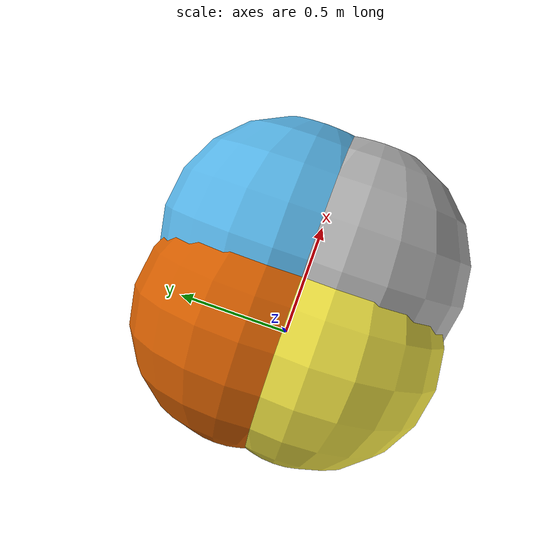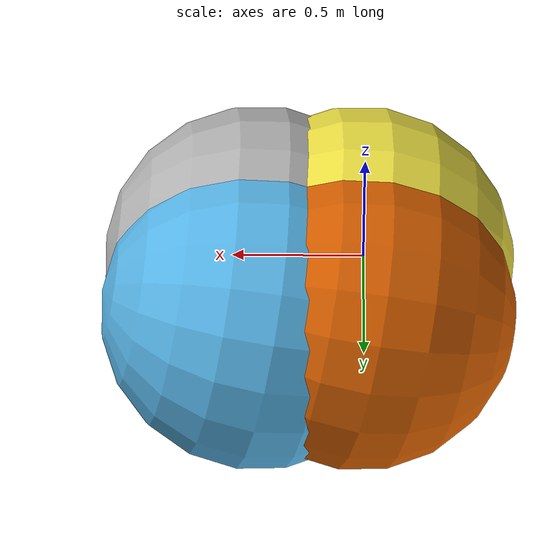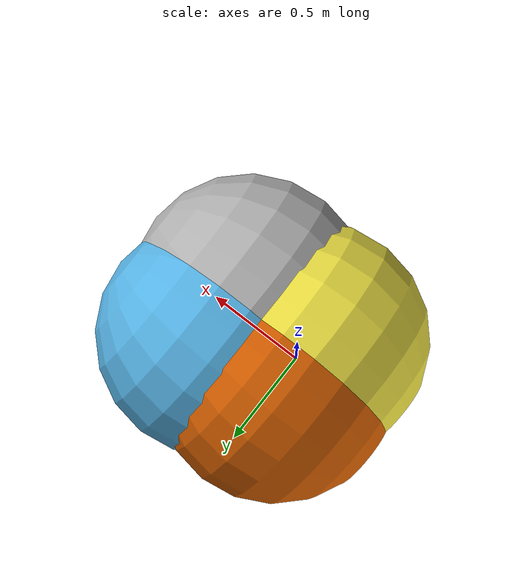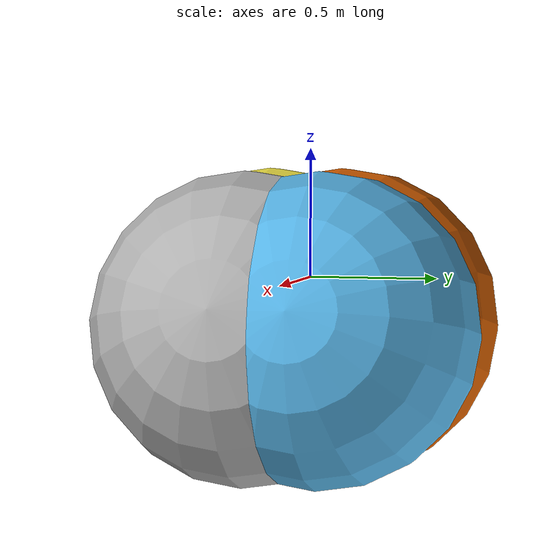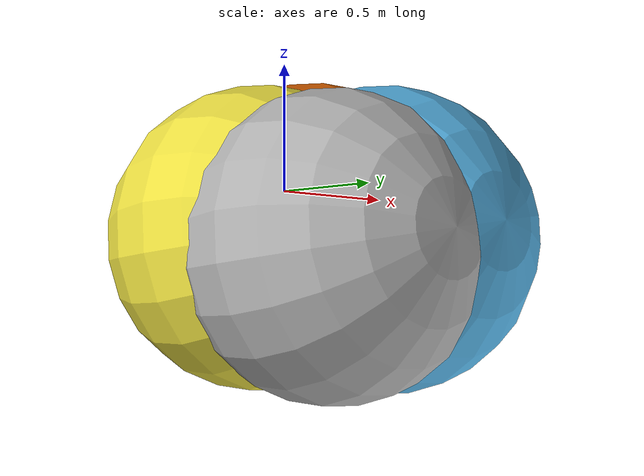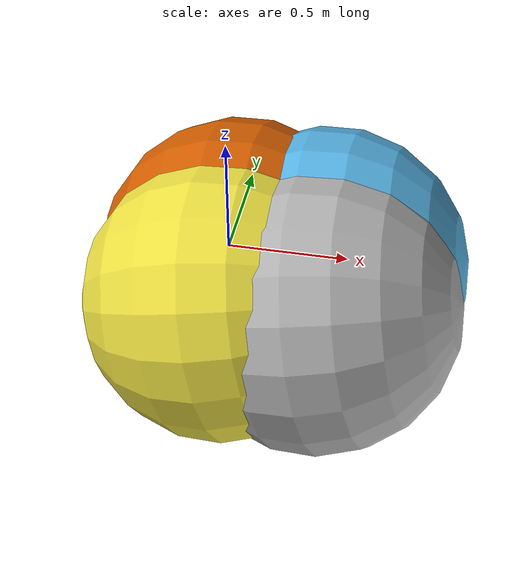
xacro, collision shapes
<?xml version="1.0" encoding="utf-8"?>
<robot name="go2"  xmlns:xacro="http://www.ros.org/wiki/xacro">

  <!--BASE-->
  <link name="base_footprint" />
  <link name="base">
    <inertial>
      <origin xyz="0.021112 0 -0.005366" rpy="0 0 0" />
      <mass value="6.921" />
      <inertia
        ixx="0.02448" ixy="0.00012166" ixz="0.0014849"
        iyy="0.098077" iyz="-3.12E-05" izz="0.107" />
    </inertial>
    <visual>
      <origin
        xyz="0 0 0" rpy="0 0 0" />
      <geometry>
        <mesh
          filename="$(find go2_description)/meshes/base.dae" scale ="1 1 1"/>
      </geometry>
    </visual>
    <collision>
      <origin rpy="0 0 0" xyz="0 0 0" />
      <geometry>
        <box size="0.3762 0.0935 0.114" />
      </geometry>
    </collision>
  </link>
  <joint name="base_joint" type="fixed">
        <parent link="base_footprint" />
        <child link="base" />
        <origin xyz="0 0 0" rpy="0 0 0" />
  </joint>

  <!--HEAD UPPER-->
  <link name="Head_upper">
    <inertial>
      <origin xyz="0 0 0" rpy="0 0 0" />
      <mass value="0.001" />
      <inertia
        ixx="9.6e-06" ixy="0" ixz="0"
        iyy="9.6e-06" iyz="0" izz="9.6e-06" />
    </inertial>
    <collision>
      <origin xyz="0 0 0" rpy="0 0 0" />
      <geometry>
        <cylinder radius="0.05" length="0.09" />
      </geometry>
    </collision>
  </link>
  <joint name="Head_upper_joint" type="fixed" >
    <origin xyz="0.285 0 0.01" rpy="0 0 0" />
    <parent link="base" />
    <child  link="Head_upper" />
    <axis  xyz="0 0 0" />
  </joint>

  <!--HEAD_LOWER-->
  <link name="Head_lower">
    <inertial>
      <origin xyz="0 0 0" rpy="0 0 0" />
      <mass value="0.001" />
      <inertia
        ixx="9.6e-06" ixy="0" ixz="0"
        iyy="9.6e-06"  iyz="0" izz="9.6e-06" />
    </inertial>
    <collision>
      <origin xyz="0 0 0" rpy="0 0 0" />
      <geometry>
        <sphere radius="0.047" />
      </geometry>
    </collision>
  </link>
  <joint name="Head_lower_joint" type="fixed" >
    <origin xyz="0.008 0 -0.07" rpy="0 0 0" />
    <parent link="Head_upper" />
    <child link="Head_lower" />
    <axis xyz="0 0 0" />
  </joint>

  <!--FL_HIP-->
  <link name="FL_hip">
    <inertial>
      <origin xyz="-0.0054 0.00194 -0.000105" rpy="0 0 0" />
      <mass value="0.678" />
      <inertia
        ixx="0.00048" ixy="-3.01E-06" ixz="1.11E-06"
        iyy="0.000884" iyz="-1.42E-06" izz="0.000596" />
    </inertial>
    <visual>
      <origin xyz="0 0 0" rpy="0 0 0" />
      <geometry>
        <mesh filename="$(find go2_description)/meshes/hip.dae" scale ="1 1 1"/>
      </geometry>

    </visual>
    <collision>
      <origin rpy="1.5707963267948966 0 0" xyz="0 0.08 0" />
      <geometry>
        <cylinder length="0.04" radius="0.046" />
      </geometry>
    </collision>
  </link>

  <joint name="FL_hip_joint" type="revolute">
    <origin xyz="0.1934 0.0465 0" rpy="0 0 0" />
    <parent link="base" />
    <child  link="FL_hip" />
    <axis xyz="1 0 0" />
    <limit lower="-1.0472" upper="1.0472" effort="23.7" velocity="30.1" />

  </joint>

  <!--FL_THIGH-->
  <link name="FL_thigh">
    <inertial>
      <origin xyz="-0.00374 -0.0223 -0.0327" rpy="0 0 0" />
      <mass value="1.152" />
      <inertia
        ixx="0.00584" ixy="8.72E-05" ixz="-0.000289"
        iyy="0.0058"  iyz="0.000808" izz="0.00103" />
    </inertial>
    <visual>
      <origin xyz="0 0 0" rpy="0 0 0" />
      <geometry>
        <mesh filename="$(find go2_description)/meshes/thigh.dae" scale ="1 1 1"/>
      </geometry>

    </visual>
    <collision>
      <origin rpy="0 1.5707963267948966 0" xyz="0 0 -0.1065" />
      <geometry>
        <box size="0.213 0.0245 0.034" />
      </geometry>
    </collision>
  </link>

  <joint name="FL_thigh_joint" type="revolute">
    <origin xyz="0 0.0955 0" rpy="0 0 0" />
    <parent link="FL_hip" />
    <child  link="FL_thigh" />
    <axis xyz="0 1 0" />
    <limit lower="-1.5708" upper="3.4907" effort="23.7" velocity="30.1" />

  </joint>

  <!--FL_CALF-->
  <link name="FL_calf">
    <inertial>
      <origin xyz="0.00548 -0.000975 -0.115" rpy="0 0 0" />
      <mass
        value="0.154" />
      <inertia
        ixx="0.00108" ixy="3.4E-07" ixz="1.72E-05"
        iyy="0.0011" iyz="8.28E-06" izz="3.29E-05" />
    </inertial>
    <visual>
      <origin xyz="0 0 0" rpy="0 0 0" />
      <geometry>
        <mesh filename="$(find go2_description)/meshes/calf.dae" scale ="1 1 1" />
      </geometry>

    </visual>
    <collision>
      <origin rpy="0 -0.21 0" xyz="0.008 0 -0.06" />
      <geometry>
        <cylinder length="0.12" radius="0.012" />
      </geometry>
    </collision>
  </link>
  <joint name="FL_calf_joint" type="revolute">
    <origin xyz="0 0 -0.213" rpy="0 0 0" />
    <parent link="FL_thigh" />
    <child  link="FL_calf" />
    <axis xyz="0 1 0" />
    <limit lower="-2.7227" upper="-0.83776" effort="45.43" velocity="15.70" />

  </joint>

  <!--FL_CALF_LOWER-->
 <link name="FL_calflower">
    <collision>
      <origin rpy="0 0 0" xyz="0 0 0" />
      <geometry>
        <cylinder length="0.065" radius="0.011" />
      </geometry>
    </collision>
  </link>

  <joint name="FL_calflower_joint" type="fixed">
    <origin xyz="0.020 0 -0.148" rpy="0 0.05 0" />
    <parent link="FL_calf" />
    <child link="FL_calflower" />
    <axis xyz="0 0 0" />
  </joint>

  <!--FL_CALF_LOWER1-->
  <link name="FL_calflower1">
    <collision>
      <origin rpy="0 0 0" xyz="0 0 0" />
      <geometry>
        <cylinder length="0.03" radius="0.0155" />
      </geometry>
    </collision>
  </link>
  <joint name="FL_calflower1_joint" type="fixed">
    <origin xyz="-0.01 0 -0.04" rpy="0 0.48 0" />
    <parent link="FL_calflower" />
    <child link="FL_calflower1" />
    <axis xyz="0 0 0" />
  </joint>

  <!--FL_FOOT-->
  <link name="FL_foot">
    <inertial>
      <origin xyz="0 0 0" rpy="0 0 0" />
      <mass value="0.04" />
      <inertia
        ixx="9.6e-06" ixy="0" ixz="0"
        iyy="9.6e-06" iyz="0" izz="9.6e-06" />
    </inertial>
    <visual>
      <origin xyz="0 0 0" rpy="0 0 0" />
      <geometry>
        <mesh filename="$(find go2_description)/meshes/foot.dae" scale ="1 1 1" />
      </geometry>

    </visual>
    <collision>
      <origin rpy="0 0 0" xyz="-0.002 0 0" />
      <geometry>
        <sphere radius="0.6" />
      </geometry>
    </collision>
  </link>
  <joint name="FL_foot_joint" type="fixed" >
    <origin xyz="0 0 -0.213" rpy="0 0 0" />
    <parent link="FL_calf" />
    <child link="FL_foot" />
    <axis xyz="0 0 0" />
  </joint>

  <!--FR_HIP-->
  <link name="FR_hip">
    <inertial>
      <origin xyz="-0.0054 -0.00194 -0.000105" rpy="0 0 0" />
      <mass value="0.678" />
      <inertia ixx="0.00048"  ixy="3.01E-06"    ixz="1.11E-06"
               iyy="0.000884" iyz="1.42E-06"   izz="0.000596" />
    </inertial>
    <visual>
      <origin xyz="0 0 0" rpy="3.1415 0 0" />
      <geometry>
        <mesh filename="$(find go2_description)/meshes/hip.dae" scale ="1 1 1" />
      </geometry>

    </visual>
    <collision>
      <origin rpy="1.5707963267948966 0 0" xyz="0 -0.08 0" />
      <geometry>
        <cylinder length="0.04" radius="0.046" />
      </geometry>
    </collision>
  </link>

  <joint name="FR_hip_joint" type="revolute">
    <origin xyz="0.1934 -0.0465 0" rpy="0 0 0" />
    <parent link="base" />
    <child  link="FR_hip" />
    <axis xyz="1 0 0" />
    <limit lower="-1.0472" upper="1.0472" effort="23.7" velocity="30.1" />

  </joint>

  <!--FR_THIGH-->
  <link name="FR_thigh">
    <inertial>
      <origin xyz="-0.00374 0.0223 -0.0327" rpy="0 0 0" />
      <mass   value="1.152" />
      <inertia ixx="0.00584"  ixy="-8.72E-05"  ixz="-0.000289"
               iyy="0.0058"   iyz="-0.000808"  izz="0.00103" />
    </inertial>
    <visual>
      <origin xyz="0 0 0" rpy="0 0 0" />
      <geometry>
        <mesh filename="$(find go2_description)/meshes/thigh_mirror.dae" scale ="1 1 1"/>
      </geometry>

    </visual>
    <collision>
      <origin rpy="0 1.5707963267948966 0" xyz="0 0 -0.1065" />
      <geometry>
        <box size="0.213 0.0245 0.034" />
      </geometry>
    </collision>
  </link>
  <joint name="FR_thigh_joint" type="revolute">
    <origin xyz="0 -0.0955 0" rpy="0 0 0" />
    <parent link="FR_hip" />
    <child link="FR_thigh" />
    <axis xyz="0 1 0" />
    <limit lower="-1.5708" upper="3.4907" effort="23.7" velocity="30.1" />

  </joint>

  <!--FR_CALF-->
  <link name="FR_calf">
    <inertial>
      <origin xyz="0.00548 0.000975 -0.115" rpy="0 0 0" />
      <mass value="0.154" />
      <inertia ixx="0.00108" ixy="-3.4E-07" ixz="1.72E-05"
               iyy="0.0011"  iyz="-8.28E-06" izz="3.29E-05" />
    </inertial>
    <visual>
      <origin xyz="0 0 0" rpy="0 0 0" />
      <geometry>
        <mesh filename="$(find go2_description)/meshes/calf_mirror.dae" scale ="1 1 1"/>
      </geometry>

    </visual>
    <collision>
      <origin rpy="0 -0.2 0" xyz="0.01 0 -0.06" />
      <geometry>
        <cylinder length="0.12" radius="0.013" />
      </geometry>
    </collision>
  </link>
  <joint name="FR_calf_joint" type="revolute">
    <origin xyz="0 0 -0.213" rpy="0 0 0" />
    <parent link="FR_thigh" />
    <child  link="FR_calf" />
    <axis  xyz="0 1 0" />
    <limit lower="-2.7227" upper="-0.83776" effort="45.43" velocity="15.70" />

  </joint>

  <!--FR_CALF_LOWER-->
  <link name="FR_calflower">
    <collision>
      <origin rpy="0 0 0" xyz="0 0 0" />
      <geometry>
        <cylinder length="0.065" radius="0.011" />
      </geometry>
    </collision>
  </link>
  <joint  name="FR_calflower_joint" type="fixed">
    <origin xyz="0.020 0 -0.148"  rpy="0 0.05 0" />
    <parent link="FR_calf" />
    <child link="FR_calflower" />
    <axis
      xyz="0 0 0" />
  </joint>
  <!--FR_CALF_LOWER1-->
   <link name="FR_calflower1">
    <collision>
      <origin rpy="0 0 0" xyz="0 0 0" />
      <geometry>
        <cylinder length="0.03" radius="0.0155" />
      </geometry>
    </collision>
  </link>
  <joint name="FR_calflower1_joint" type="fixed">
    <origin xyz="-0.01 0 -0.04" rpy="0 0.48 0" />
    <parent link="FR_calflower" />
    <child link="FR_calflower1" />
    <axis xyz="0 0 0" />
  </joint>

   <!--FR_FOOT-->
  <link name="FR_foot">
   <inertial>
      <origin xyz="0 0 0" rpy="0 0 0" />
      <mass value="0.04" />
      <inertia  ixx="9.6e-06" ixy="0" ixz="0"
                iyy="9.6e-06" iyz="0" izz="9.6e-06" />
    </inertial>
    <visual>
      <origin xyz="0 0 0" rpy="0 0 0" />
      <geometry>
        <mesh filename="$(find go2_description)/meshes/foot.dae" scale ="1 1 1"/>
      </geometry>

    </visual>
    <collision>
      <origin rpy="0 0 0" xyz="-0.002 0 0" />
      <geometry>
        <sphere radius="0.6" />
      </geometry>
    </collision>
  </link>
  <joint name="FR_foot_joint" type="fixed">
    <origin xyz="0 0 -0.213" rpy="0 0 0" />
    <parent link="FR_calf" />
    <child link="FR_foot" />
    <axis xyz="0 0 0" />
  </joint>

  <!--RL_HIP-->
  <link name="RL_hip">
    <inertial>
      <origin xyz="0.0054 0.00194 -0.000105" rpy="0 0 0" />
      <mass   value="0.678" />
      <inertia ixx="0.00048" ixy="3.01E-06" ixz="-1.11E-06"
               iyy="0.000884" iyz="-1.42E-06" izz="0.000596" />
    </inertial>
    <visual>
      <origin xyz="0 0 0" rpy="0 3.1415 0" />
      <geometry>
        <mesh filename="$(find go2_description)/meshes/hip.dae" scale ="1 1 1"/>
      </geometry>

    </visual>
    <collision>
      <origin rpy="1.5707963267948966 0 0" xyz="0 0.08 0" />
      <geometry>
        <cylinder length="0.04" radius="0.046" />
      </geometry>
    </collision>
  </link>
  <joint name="RL_hip_joint" type="revolute">
    <origin xyz="-0.1934 0.0465 0" rpy="0 0 0" />
    <parent link="base" />
    <child link="RL_hip" />
    <axis xyz="1 0 0" />
    <limit lower="-1.0472" upper="1.0472" effort="23.7" velocity="30.1" />

  </joint>

  <!--RL_THIGH-->
  <link name="RL_thigh">
    <inertial>
      <origin xyz="-0.00374 -0.0223 -0.0327" rpy="0 0 0" />
      <mass value="1.152" />
      <inertia  ixx="0.00584" ixy="8.72E-05"  ixz="-0.000289"
                iyy="0.0058"  iyz="0.000808"  izz="0.00103" />
    </inertial>
    <visual>
      <origin  xyz="0 0 0"  rpy="0 0 0" />
      <geometry>
        <mesh filename="$(find go2_description)/meshes/thigh.dae" scale ="1 1 1"/>
      </geometry>

    </visual>
    <collision>
      <origin rpy="0 1.5707963267948966 0" xyz="0 0 -0.1065" />
      <geometry>
        <box size="0.213 0.0245 0.034" />
      </geometry>
    </collision>
  </link>
  <joint name="RL_thigh_joint" type="revolute">
    <origin xyz="0 0.0955 0" rpy="0 0 0" />
    <parent link="RL_hip" />
    <child link="RL_thigh" />
    <axis xyz="0 1 0" />
    <limit lower="-0.5236" upper="4.5379" effort="23.7" velocity="30.1" />

  </joint>

  <!--RL_CALF-->
  <link name="RL_calf">
    <inertial>
      <origin xyz="0.00548 -0.000975 -0.115" rpy="0 0 0" />
      <mass value="0.154" />
      <inertia ixx="0.00108" ixy="3.4E-07" ixz="1.72E-05"
               iyy="0.0011"  iyz="8.28E-06" izz="3.29E-05" />
    </inertial>
    <visual>
      <origin xyz="0 0 0" rpy="0 0 0" />
      <geometry>
        <mesh filename="$(find go2_description)/meshes/calf.dae" scale ="1 1 1"/>
      </geometry>

    </visual>
    <collision>
      <origin rpy="0 -0.2 0" xyz="0.01 0 -0.06" />
      <geometry>
        <cylinder length="0.12" radius="0.013" />
      </geometry>
    </collision>
  </link>
  <joint name="RL_calf_joint" type="revolute">
    <origin xyz="0 0 -0.213" rpy="0 0 0" />
    <parent link="RL_thigh" />
    <child  link="RL_calf" />
    <axis   xyz="0 1 0" />
    <limit  lower="-2.7227" upper="-0.83776" effort="45.43" velocity="15.70" />

  </joint>

  <!--RL_CALF_LOWER-->
  <link name="RL_calflower">
    <collision>
      <origin rpy="0 0 0" xyz="0 0 0" />
      <geometry>
        <cylinder length="0.065" radius="0.011" />
      </geometry>
    </collision>
  </link>
  <joint name="RL_calflower_joint" type="fixed">
    <origin xyz="0.020 0 -0.148" rpy="0 0.05 0" />
    <parent link="RL_calf" />
    <child  link="RL_calflower" />
    <axis  xyz="0 0 0" />
  </joint>

  <!--RL_CALF_LOWER1-->
  <link name="RL_calflower1">
    <collision>
      <origin rpy="0 0 0" xyz="0 0 0" />
      <geometry>
        <cylinder length="0.03" radius="0.0155" />
      </geometry>
    </collision>
  </link>
  <joint name="RL_calflower1_joint" type="fixed">
    <origin xyz="-0.01 0 -0.04" rpy="0 0.48 0" />
    <parent link="RL_calflower" />
    <child link="RL_calflower1" />
    <axis  xyz="0 0 0" />
  </joint>

  <!--RL_FOOT-->
  <link name="RL_foot">
    <inertial>
      <origin xyz="0 0 0" rpy="0 0 0" />
      <mass  value="0.04" />
      <inertia ixx="9.6e-06" ixy="0" ixz="0"
               iyy="9.6e-06" iyz="0" izz="9.6e-06" />
    </inertial>
    <visual>
      <origin xyz="0 0 0" rpy="0 0 0" />
      <geometry>
        <mesh filename="$(find go2_description)/meshes/foot.dae" scale ="1 1 1"/>
      </geometry>
    </visual>
    <collision>
      <origin rpy="0 0 0" xyz="-0.002 0 0" />
      <geometry>
        <sphere radius="0.6" />
      </geometry>
    </collision>
  </link>
  <joint name="RL_foot_joint" type="fixed" >
    <origin xyz="0 0 -0.213" rpy="0 0 0" />
    <parent link="RL_calf" />
    <child  link="RL_foot" />
    <axis  xyz="0 0 0" />
  </joint>

  <!--RR_HIP-->
  <link name="RR_hip">
    <inertial>
      <origin xyz="0.0054 -0.00194 -0.000105" rpy="0 0 0" />
      <mass   value="0.678" />
      <inertia  ixx="0.00048" ixy="-3.01E-06" ixz="-1.11E-06"
                iyy="0.000884" iyz="1.42E-06" izz="0.000596" />
    </inertial>
    <visual>
      <origin xyz="0 0 0" rpy="3.1415 3.1415 0" />
      <geometry>
        <mesh filename="$(find go2_description)/meshes/hip.dae" scale ="1 1 1" />
      </geometry>

    </visual>
    <collision>
      <origin rpy="1.5707963267948966 0 0" xyz="0 -0.08 0" />
      <geometry>
        <cylinder length="0.04" radius="0.046" />
      </geometry>
    </collision>
  </link>
  <joint name="RR_hip_joint" type="revolute">
    <origin xyz="-0.1934 -0.0465 0" rpy="0 0 0" />
    <parent link="base" />
    <child  link="RR_hip" />
    <axis  xyz="1 0 0" />
    <limit  lower="-1.0472" upper="1.0472" effort="23.7" velocity="30.1" />

  </joint>

  <!--RR_THIGH-->
  <link name="RR_thigh">
    <inertial>
      <origin xyz="-0.00374 0.0223 -0.0327" rpy="0 0 0" />
      <mass  value="1.152" />
      <inertia ixx="0.00584" ixy="-8.72E-05" ixz="-0.000289"
               iyy="0.0058"  iyz="-0.000808" izz="0.00103" />
    </inertial>
    <visual>
      <origin xyz="0 0 0" rpy="0 0 0" />
      <geometry>
        <mesh filename="$(find go2_description)/meshes/thigh_mirror.dae" scale ="1 1 1"/>
      </geometry>

    </visual>
    <collision>
      <origin rpy="0 1.5707963267948966 0" xyz="0 0 -0.1065" />
      <geometry>
        <box size="0.213 0.0245 0.034" />
      </geometry>
    </collision>
  </link>
  <joint name="RR_thigh_joint" type="revolute">
    <origin xyz="0 -0.0955 0" rpy="0 0 0" />
    <parent link="RR_hip" />
    <child  link="RR_thigh" />
    <axis  xyz="0 1 0" />
    <limit  lower="-0.5236" upper="4.5379" effort="23.7" velocity="30.1" />

  </joint>

  <!--RR_CALF-->
  <link name="RR_calf">
    <inertial>
      <origin xyz="0.00548 0.000975 -0.115" rpy="0 0 0" />
      <mass value="0.154" />
      <inertia ixx="0.00108" ixy="-3.4E-07" ixz="1.72E-05"
               iyy="0.0011"  iyz="-8.28E-06" izz="3.29E-05" />
    </inertial>
    <visual>
      <origin xyz="0 0 0" rpy="0 0 0" />
      <geometry>
        <mesh filename="$(find go2_description)/meshes/calf_mirror.dae" scale ="1 1 1" />
      </geometry>

    </visual>
    <collision>
      <origin rpy="0 -0.2 0" xyz="0.01 0 -0.06" />
      <geometry>
        <cylinder length="0.12" radius="0.013" />
      </geometry>
    </collision>
  </link>
  <joint name="RR_calf_joint" type="revolute">
    <origin xyz="0 0 -0.213" rpy="0 0 0" />
    <parent  link="RR_thigh" />
    <child link="RR_calf" />
    <axis xyz="0 1 0" />
    <limit lower="-2.7227" upper="-0.83776" effort="45.43" velocity="15.70" />

 </joint>

  <!--RR_CALF_LOWER-->
  <link name="RR_calflower">
    <collision>
      <origin rpy="0 0 0" xyz="0 0 0" />
      <geometry>
        <cylinder length="0.065" radius="0.011" />
      </geometry>
    </collision>
  </link>
  <joint name="RR_calflower_joint" type="fixed">
    <origin xyz="0.020 0 -0.148" rpy="0 0.05 0" />
    <parent link="RR_calf" />
    <child link="RR_calflower" />
    <axis xyz="0 0 0" />
  </joint>

  <!--RR_CALF_LOWER1-->
  <link name="RR_calflower1">
    <collision>
      <origin rpy="0 0 0" xyz="0 0 0" />
      <geometry>
        <cylinder length="0.03" radius="0.0155" />
      </geometry>
    </collision>
  </link>
  <joint name="RR_calflower1_joint" type="fixed">
    <origin xyz="-0.01 0 -0.04" rpy="0 0.48 0" />
    <parent link="RR_calflower" />
    <child  link="RR_calflower1" />
    <axis  xyz="0 0 0" />
  </joint>

  <!--RR_FOOT-->
  <link name="RR_foot">
    <inertial>
      <origin xyz="0 0 0" rpy="0 0 0" />
      <mass   value="0.04" />
      <inertia  ixx="9.6e-06" ixy="0" ixz="0"
                iyy="9.6e-06" iyz="0" izz="9.6e-06" />
    </inertial>
    <visual>
      <origin xyz="0 0 0" rpy="0 0 0" />
      <geometry>
        <mesh filename="$(find go2_description)/meshes/foot.dae" scale ="1 1 1"/>
      </geometry>

    </visual>
    <collision>
      <origin rpy="0 0 0" xyz="-0.002 0 0" />
      <geometry>
        <sphere radius="0.6" />
      </geometry>
    </collision>
 </link>
 <joint name="RR_foot_joint" type="fixed" >
    <origin xyz="0 0 -0.213" rpy="0 0 0" />
    <parent link="RR_calf" />
    <child link="RR_foot" />
    <axis xyz="0 0 0" />
 </joint>

 <!--IMU-->
 <link name="imu">
    <inertial>
      <origin xyz="0 0 0" rpy="0 0 0" />
      <mass value="0" />
      <inertia ixx="0" ixy="0" ixz="0"
               iyy="0" iyz="0" izz="0" />
    </inertial>
 </link>
 <joint name="imu_joint" type="fixed">
    <origin xyz="-0.02557 0 0.04232" rpy="0 0 0" />
    <parent link="base" />
    <child  link="imu" />
    <axis  xyz="0 0 0" />
 </joint>

 <!--RADAR-->
 <link  name="radar">
    <inertial>
      <origin xyz="0 0 0" rpy="0 0 0" />
      <mass   value="0" />
      <inertia ixx="0" ixy="0" ixz="0"
               iyy="0" iyz="0" izz="0" />
    </inertial>
 </link>
 <joint name="radar_joint" type="fixed">
    <origin xyz="0.28945 0 -0.046825" rpy="0 2.8782 0" />
    <parent link="base" />
    <child  link="radar" />
    <axis  xyz="0 0 0" />
 </joint>
  <ros2_control name="Go2System" type="system">
      <hardware>
           <plugin>gz_ros2_control/GazeboSimSystem</plugin>
           <param name="robot_description">go2_description</param>
           <param name="config_file">$(find go2_description)/config/robot_control.yaml</param>
           <param name="use_sim_time">true</param>
      </hardware>

        <joint name="FL_hip_joint">
          <command_interface name="position"/>
          <state_interface name="position"/>
          <state_interface name="velocity"/>
        </joint>
        <joint name="FL_thigh_joint">
          <command_interface name="position"/>
          <state_interface name="position"/>
          <state_interface name="velocity"/>
        </joint>
        <joint name="FL_calf_joint">
          <command_interface name="position"/>
          <state_interface name="position"/>
          <state_interface name="velocity"/>
        </joint>

        <joint name="RL_hip_joint">
          <command_interface name="position"/>
          <state_interface name="position"/>
          <state_interface name="velocity"/>
        </joint>
        <joint name="RL_thigh_joint">
          <command_interface name="position"/>
          <state_interface name="position"/>
          <state_interface name="velocity"/>
        </joint>
        <joint name="RL_calf_joint">
          <command_interface name="position"/>
          <state_interface name="position"/>
          <state_interface name="velocity"/>
        </joint>

        <joint name="FR_hip_joint">
          <command_interface name="position"/>
          <state_interface name="position"/>
          <state_interface name="velocity"/>
        </joint>
        <joint name="FR_thigh_joint">
          <command_interface name="position"/>
          <state_interface name="position"/>
          <state_interface name="velocity"/>
        </joint>
        <joint name="FR_calf_joint">
          <command_interface name="position"/>
          <state_interface name="position"/>
          <state_interface name="velocity"/>
        </joint>

        <joint name="RR_hip_joint">
          <command_interface name="position"/>
          <state_interface name="position"/>
          <state_interface name="velocity"/>
        </joint>
        <joint name="RR_thigh_joint">
          <command_interface name="position"/>
          <state_interface name="position"/>
          <state_interface name="velocity"/>
        </joint>
        <joint name="RR_calf_joint">
          <command_interface name="position"/>
          <state_interface name="position"/>
          <state_interface name="velocity"/>
        </joint>

  </ros2_control>
</robot>
